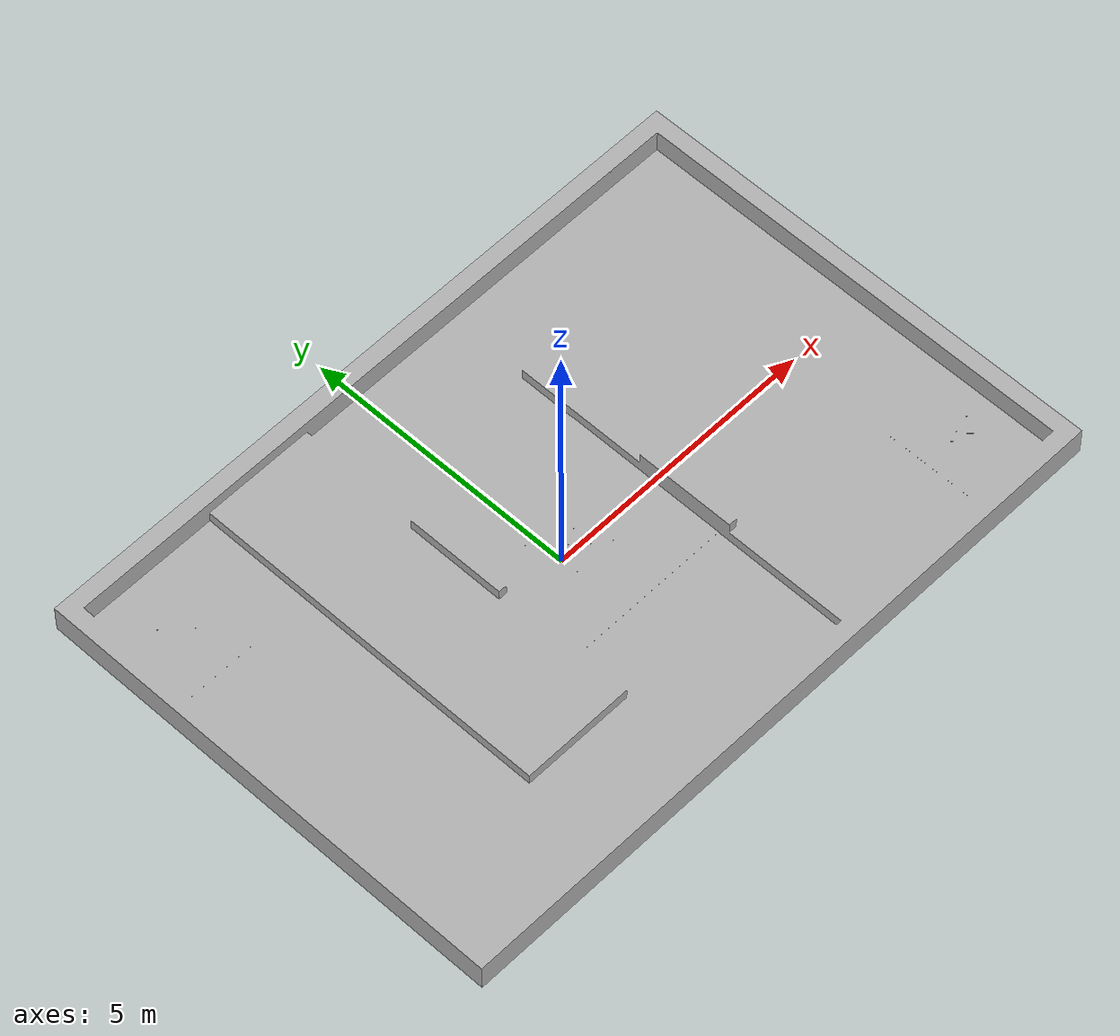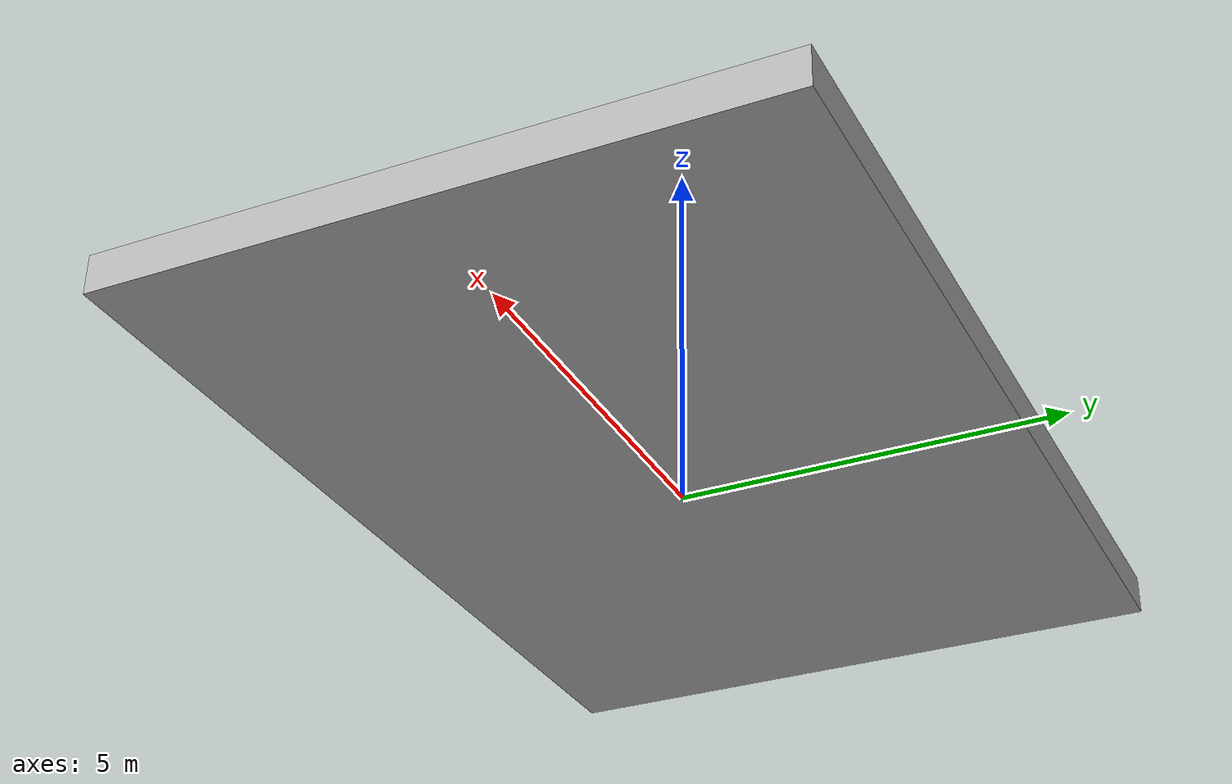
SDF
<?xml version='1.0'?>
<sdf version='1.6'>
  <model name='rmul_2026'>
    <static>true</static>
    <link name='body'>
      <pose frame=''>-6 -4.25 0.2 0 0 0</pose>
      <self_collide>0</self_collide>
      <kinematic>0</kinematic>
      <gravity>1</gravity>
      <visual name='visual'>
        <material>
          <ambient>0.3 0.3 0.3 1</ambient>
          <diffuse>0.7 0.7 0.7 1</diffuse>
          <specular>0.01 0.01 0.01 1</specular>
        </material>
        <geometry>
          <mesh>
            <uri>model://rmul_2026/meshes/rmul_2026.stl</uri>
            <scale>1 1 1</scale>
          </mesh>
        </geometry>
      </visual>
      <collision name='collision'>
        <geometry>
          <mesh>
            <uri>model://rmul_2026/meshes/rmul_2026.stl</uri>
            <scale>1 1 1</scale>
          </mesh>
        </geometry>
      </collision>
    </link>
  </model>
</sdf>
